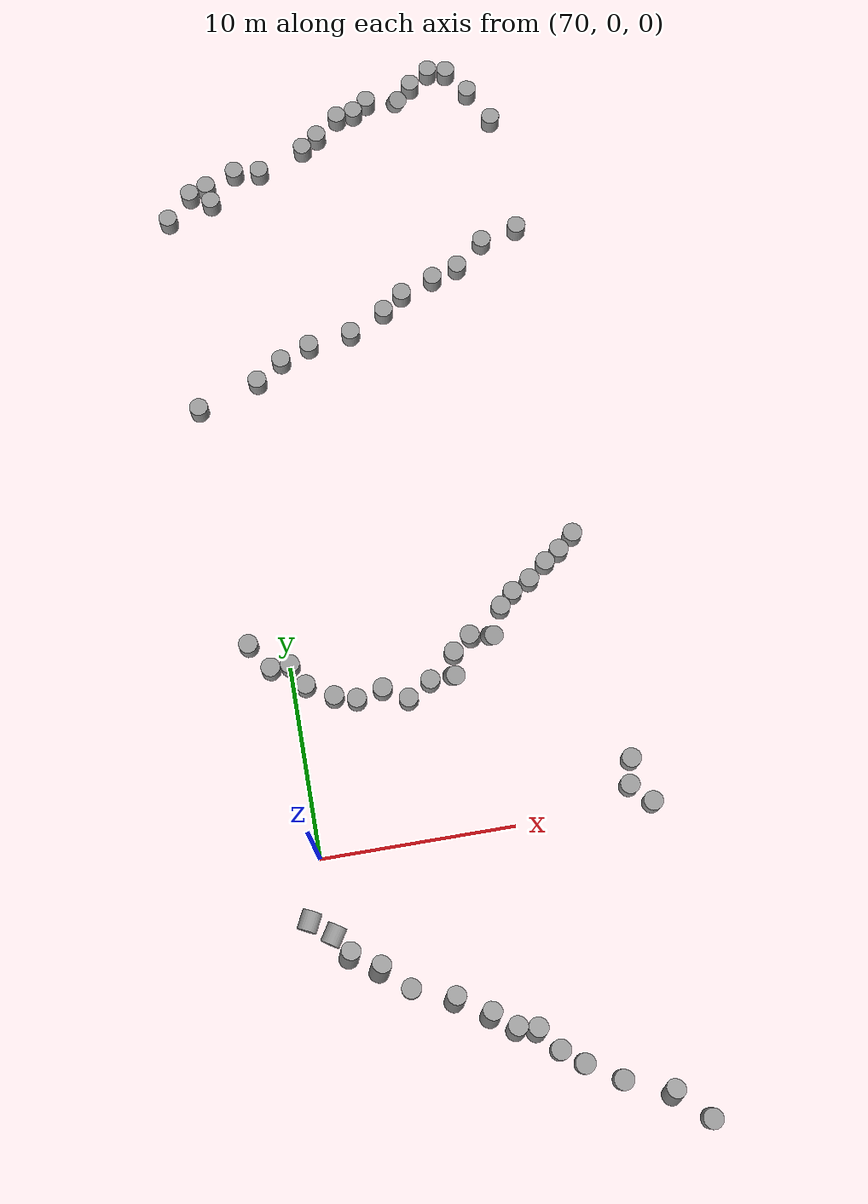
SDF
<sdf version="1.7">
 <world name="default">
  <model name="unit_cylinder_85_clone_244_clone_387">
   <pose>86.1624 32.8533 0.403046 -0.005741 -0.001075 0.00014</pose>
   <link name="link">
    <inertial>
     <mass>1</mass>
     <inertia><ixx>0.145833</ixx><ixy>0</ixy><ixz>0</ixz><iyy>0.145833</iyy><iyz>0</iyz><izz>0.125</izz></inertia>
    </inertial>
    <collision name="collision">
     <geometry><cylinder><radius>0.5</radius><length>1</length></cylinder></geometry>
    </collision>
    <visual name="visual">
     <geometry><cylinder><radius>0.5</radius><length>1</length></cylinder></geometry>
     <material>
      <script><name>Gazebo/Grey</name><uri>file://media/materials/scripts/gazebo.material</uri></script>
     </material>
    </visual>
   </link>
  </model>
  <model name="unit_cylinder_85_clone_244_clone_388">
   <pose>84.0852 32.3172 0.403854 -0.004555 -0.000523 0.000243</pose>
   <link name="link">
    <inertial>
     <mass>1</mass>
     <inertia><ixx>0.145833</ixx><ixy>0</ixy><ixz>0</ixz><iyy>0.145833</iyy><iyz>0</iyz><izz>0.125</izz></inertia>
    </inertial>
    <collision name="collision">
     <geometry><cylinder><radius>0.5</radius><length>1</length></cylinder></geometry>
    </collision>
    <visual name="visual">
     <geometry><cylinder><radius>0.5</radius><length>1</length></cylinder></geometry>
     <material>
      <script><name>Gazebo/Grey</name><uri>file://media/materials/scripts/gazebo.material</uri></script>
     </material>
    </visual>
   </link>
  </model>
  <model name="unit_cylinder_85_clone_244_clone_389">
   <pose>82.4638 31.0029 0.408848 -0.003016 0.000114 0.00044</pose>
   <link name="link">
    <inertial>
     <mass>1</mass>
     <inertia><ixx>0.145833</ixx><ixy>0</ixy><ixz>0</ixz><iyy>0.145833</iyy><iyz>0</iyz><izz>0.125</izz></inertia>
    </inertial>
    <collision name="collision">
     <geometry><cylinder><radius>0.5</radius><length>1</length></cylinder></geometry>
    </collision>
    <visual name="visual">
     <geometry><cylinder><radius>0.5</radius><length>1</length></cylinder></geometry>
     <material>
      <script><name>Gazebo/Grey</name><uri>file://media/materials/scripts/gazebo.material</uri></script>
     </material>
    </visual>
   </link>
  </model>
  <model name="unit_cylinder_85_clone_244_clone_390">
   <pose>80.9995 30.5323 0.41035 -0.0047 -0.000592 0.000469</pose>
   <link name="link">
    <inertial>
     <mass>1</mass>
     <inertia><ixx>0.145833</ixx><ixy>0</ixy><ixz>0</ixz><iyy>0.145833</iyy><iyz>0</iyz><izz>0.125</izz></inertia>
    </inertial>
    <collision name="collision">
     <geometry><cylinder><radius>0.5</radius><length>1</length></cylinder></geometry>
    </collision>
    <visual name="visual">
     <geometry><cylinder><radius>0.5</radius><length>1</length></cylinder></geometry>
     <material>
      <script><name>Gazebo/Grey</name><uri>file://media/materials/scripts/gazebo.material</uri></script>
     </material>
    </visual>
   </link>
  </model>
  <model name="unit_cylinder_85_clone_244_clone_391">
   <pose>78.0001 29.0019 0.415406 -0.002977 0.000135 0.000432</pose>
   <link name="link">
    <inertial>
     <mass>1</mass>
     <inertia><ixx>0.145833</ixx><ixy>0</ixy><ixz>0</ixz><iyy>0.145833</iyy><iyz>0</iyz><izz>0.125</izz></inertia>
    </inertial>
    <collision name="collision">
     <geometry><cylinder><radius>0.5</radius><length>1</length></cylinder></geometry>
    </collision>
    <visual name="visual">
     <geometry><cylinder><radius>0.5</radius><length>1</length></cylinder></geometry>
     <material>
      <script><name>Gazebo/Grey</name><uri>file://media/materials/scripts/gazebo.material</uri></script>
     </material>
    </visual>
   </link>
  </model>
  <model name="unit_cylinder_85_clone_244_clone_392">
   <pose>76.0001 28.0019 0.41865 -0.002969 0.000136 0.000405</pose>
   <link name="link">
    <inertial>
     <mass>1</mass>
     <inertia><ixx>0.145833</ixx><ixy>0</ixy><ixz>0</ixz><iyy>0.145833</iyy><iyz>0</iyz><izz>0.125</izz></inertia>
    </inertial>
    <collision name="collision">
     <geometry><cylinder><radius>0.5</radius><length>1</length></cylinder></geometry>
    </collision>
    <visual name="visual">
     <geometry><cylinder><radius>0.5</radius><length>1</length></cylinder></geometry>
     <material>
      <script><name>Gazebo/Grey</name><uri>file://media/materials/scripts/gazebo.material</uri></script>
     </material>
    </visual>
   </link>
  </model>
  <model name="unit_cylinder_85_clone_244_clone_393">
   <pose>73.6332 27.6292 0.419703 -0.004467 -0.000468 0.000398</pose>
   <link name="link">
    <inertial>
     <mass>1</mass>
     <inertia><ixx>0.145833</ixx><ixy>0</ixy><ixz>0</ixz><iyy>0.145833</iyy><iyz>0</iyz><izz>0.125</izz></inertia>
    </inertial>
    <collision name="collision">
     <geometry><cylinder><radius>0.5</radius><length>1</length></cylinder></geometry>
    </collision>
    <visual name="visual">
     <geometry><cylinder><radius>0.5</radius><length>1</length></cylinder></geometry>
     <material>
      <script><name>Gazebo/Grey</name><uri>file://media/materials/scripts/gazebo.material</uri></script>
     </material>
    </visual>
   </link>
  </model>
  <model name="unit_cylinder_85_clone_244_clone_394">
   <pose>71.9996 27.0036 0.421702 -0.004438 -0.000455 0.00042</pose>
   <link name="link">
    <inertial>
     <mass>1</mass>
     <inertia><ixx>0.145833</ixx><ixy>0</ixy><ixz>0</ixz><iyy>0.145833</iyy><iyz>0</iyz><izz>0.125</izz></inertia>
    </inertial>
    <collision name="collision">
     <geometry><cylinder><radius>0.5</radius><length>1</length></cylinder></geometry>
    </collision>
    <visual name="visual">
     <geometry><cylinder><radius>0.5</radius><length>1</length></cylinder></geometry>
     <material>
      <script><name>Gazebo/Grey</name><uri>file://media/materials/scripts/gazebo.material</uri></script>
     </material>
    </visual>
   </link>
  </model>
  <model name="unit_cylinder_85_clone_244_clone_395">
   <pose>70.5555 26.0019 0.425331 -0.002982 0.000135 0.000381</pose>
   <link name="link">
    <inertial>
     <mass>1</mass>
     <inertia><ixx>0.145833</ixx><ixy>0</ixy><ixz>0</ixz><iyy>0.145833</iyy><iyz>0</iyz><izz>0.125</izz></inertia>
    </inertial>
    <collision name="collision">
     <geometry><cylinder><radius>0.5</radius><length>1</length></cylinder></geometry>
    </collision>
    <visual name="visual">
     <geometry><cylinder><radius>0.5</radius><length>1</length></cylinder></geometry>
     <material>
      <script><name>Gazebo/Grey</name><uri>file://media/materials/scripts/gazebo.material</uri></script>
     </material>
    </visual>
   </link>
  </model>
  <model name="unit_cylinder_85_clone_244_clone_396">
   <pose>67.2229 24.9198 0.428684 -0.004286 -0.000405 -0.000254</pose>
   <link name="link">
    <inertial>
     <mass>1</mass>
     <inertia><ixx>0.145833</ixx><ixy>0</ixy><ixz>0</ixz><iyy>0.145833</iyy><iyz>0</iyz><izz>0.125</izz></inertia>
    </inertial>
    <collision name="collision">
     <geometry><cylinder><radius>0.5</radius><length>1</length></cylinder></geometry>
    </collision>
    <visual name="visual">
     <geometry><cylinder><radius>0.5</radius><length>1</length></cylinder></geometry>
     <material>
      <script><name>Gazebo/Grey</name><uri>file://media/materials/scripts/gazebo.material</uri></script>
     </material>
    </visual>
   </link>
  </model>
  <model name="unit_cylinder_85_clone_244_clone_409">
   <pose>68.0358 11.4214 0.482815 -0.001848 0.002096 -0.00713</pose>
   <link name="link">
    <inertial>
     <mass>1</mass>
     <inertia><ixx>0.145833</ixx><ixy>0</ixy><ixz>0</ixz><iyy>0.145833</iyy><iyz>0</iyz><izz>0.125</izz></inertia>
    </inertial>
    <collision name="collision">
     <geometry><cylinder><radius>0.5</radius><length>1</length></cylinder></geometry>
    </collision>
    <visual name="visual">
     <geometry><cylinder><radius>0.5</radius><length>1</length></cylinder></geometry>
     <material>
      <script><name>Gazebo/Grey</name><uri>file://media/materials/scripts/gazebo.material</uri></script>
     </material>
    </visual>
   </link>
  </model>
  <model name="unit_cylinder_85_clone_244_clone_410">
   <pose>70.0012 10.0013 0.481273 -0.001855 0.002123 1.8e-05</pose>
   <link name="link">
    <inertial>
     <mass>1</mass>
     <inertia><ixx>0.145833</ixx><ixy>0</ixy><ixz>0</ixz><iyy>0.145833</iyy><iyz>0</iyz><izz>0.125</izz></inertia>
    </inertial>
    <collision name="collision">
     <geometry><cylinder><radius>0.5</radius><length>1</length></cylinder></geometry>
    </collision>
    <visual name="visual">
     <geometry><cylinder><radius>0.5</radius><length>1</length></cylinder></geometry>
     <material>
      <script><name>Gazebo/Grey</name><uri>file://media/materials/scripts/gazebo.material</uri></script>
     </material>
    </visual>
   </link>
  </model>
  <model name="unit_cylinder_85_clone_244_clone_411">
   <pose>72.0012 8.00104 0.480754 -0.001896 0.002132 1.6e-05</pose>
   <link name="link">
    <inertial>
     <mass>1</mass>
     <inertia><ixx>0.145833</ixx><ixy>0</ixy><ixz>0</ixz><iyy>0.145833</iyy><iyz>0</iyz><izz>0.125</izz></inertia>
    </inertial>
    <collision name="collision">
     <geometry><cylinder><radius>0.5</radius><length>1</length></cylinder></geometry>
    </collision>
    <visual name="visual">
     <geometry><cylinder><radius>0.5</radius><length>1</length></cylinder></geometry>
     <material>
      <script><name>Gazebo/Grey</name><uri>file://media/materials/scripts/gazebo.material</uri></script>
     </material>
    </visual>
   </link>
  </model>
  <model name="unit_cylinder_85_clone_244_clone_412">
   <pose>74.5083 7.99415 0.4698 -0.00234 0.005793 0.004432</pose>
   <link name="link">
    <inertial>
     <mass>1</mass>
     <inertia><ixx>0.145833</ixx><ixy>0</ixy><ixz>0</ixz><iyy>0.145833</iyy><iyz>0</iyz><izz>0.125</izz></inertia>
    </inertial>
    <collision name="collision">
     <geometry><cylinder><radius>0.5</radius><length>1</length></cylinder></geometry>
    </collision>
    <visual name="visual">
     <geometry><cylinder><radius>0.5</radius><length>1</length></cylinder></geometry>
     <material>
      <script><name>Gazebo/Grey</name><uri>file://media/materials/scripts/gazebo.material</uri></script>
     </material>
    </visual>
   </link>
  </model>
  <model name="unit_cylinder_85_clone_244_clone_413">
   <pose>78.2557 8.1124 0.357906 0.208734 0.13732 0.045012</pose>
   <link name="link">
    <inertial>
     <mass>1</mass>
     <inertia><ixx>0.145833</ixx><ixy>0</ixy><ixz>0</ixz><iyy>0.145833</iyy><iyz>0</iyz><izz>0.125</izz></inertia>
    </inertial>
    <collision name="collision">
     <geometry><cylinder><radius>0.5</radius><length>1</length></cylinder></geometry>
    </collision>
    <visual name="visual">
     <geometry><cylinder><radius>0.5</radius><length>1</length></cylinder></geometry>
     <material>
      <script><name>Gazebo/Grey</name><uri>file://media/materials/scripts/gazebo.material</uri></script>
     </material>
    </visual>
   </link>
  </model>
  <model name="unit_cylinder_85_clone_244_clone_414">
   <pose>79.4495 9.98051 0.520616 -0.005636 -0.112927 -0.078903</pose>
   <link name="link">
    <inertial>
     <mass>1</mass>
     <inertia><ixx>0.145833</ixx><ixy>0</ixy><ixz>0</ixz><iyy>0.145833</iyy><iyz>0</iyz><izz>0.125</izz></inertia>
    </inertial>
    <collision name="collision">
     <geometry><cylinder><radius>0.5</radius><length>1</length></cylinder></geometry>
    </collision>
    <visual name="visual">
     <geometry><cylinder><radius>0.5</radius><length>1</length></cylinder></geometry>
     <material>
      <script><name>Gazebo/Grey</name><uri>file://media/materials/scripts/gazebo.material</uri></script>
     </material>
    </visual>
   </link>
  </model>
  <model name="unit_cylinder_85_clone_244_clone_415">
   <pose>81.2706 11.2649 0.46364 -0.00292 5.6e-05 -0.000237</pose>
   <link name="link">
    <inertial>
     <mass>1</mass>
     <inertia><ixx>0.145833</ixx><ixy>0</ixy><ixz>0</ixz><iyy>0.145833</iyy><iyz>0</iyz><izz>0.125</izz></inertia>
    </inertial>
    <collision name="collision">
     <geometry><cylinder><radius>0.5</radius><length>1</length></cylinder></geometry>
    </collision>
    <visual name="visual">
     <geometry><cylinder><radius>0.5</radius><length>1</length></cylinder></geometry>
     <material>
      <script><name>Gazebo/Grey</name><uri>file://media/materials/scripts/gazebo.material</uri></script>
     </material>
    </visual>
   </link>
  </model>
  <model name="unit_cylinder_85_clone_244_clone_416">
   <pose>84.0114 13.2587 0.457615 -0.002948 0.000135 0.028821</pose>
   <link name="link">
    <inertial>
     <mass>1</mass>
     <inertia><ixx>0.145833</ixx><ixy>0</ixy><ixz>0</ixz><iyy>0.145833</iyy><iyz>0</iyz><izz>0.125</izz></inertia>
    </inertial>
    <collision name="collision">
     <geometry><cylinder><radius>0.5</radius><length>1</length></cylinder></geometry>
    </collision>
    <visual name="visual">
     <geometry><cylinder><radius>0.5</radius><length>1</length></cylinder></geometry>
     <material>
      <script><name>Gazebo/Grey</name><uri>file://media/materials/scripts/gazebo.material</uri></script>
     </material>
    </visual>
   </link>
  </model>
  <model name="unit_cylinder_85_clone_244_clone_417">
   <pose>84.8483 13.8063 0.455938 -0.002933 9.3e-05 0.009161</pose>
   <link name="link">
    <inertial>
     <mass>1</mass>
     <inertia><ixx>0.145833</ixx><ixy>0</ixy><ixz>0</ixz><iyy>0.145833</iyy><iyz>0</iyz><izz>0.125</izz></inertia>
    </inertial>
    <collision name="collision">
     <geometry><cylinder><radius>0.5</radius><length>1</length></cylinder></geometry>
    </collision>
    <visual name="visual">
     <geometry><cylinder><radius>0.5</radius><length>1</length></cylinder></geometry>
     <material>
      <script><name>Gazebo/Grey</name><uri>file://media/materials/scripts/gazebo.material</uri></script>
     </material>
    </visual>
   </link>
  </model>
  <model name="unit_cylinder_85_clone_244_clone_443">
   <pose>85.7239 14.5602 0.453977 -0.002526 -0.000437 0.000493</pose>
   <link name="link">
    <inertial>
     <mass>1</mass>
     <inertia><ixx>0.145833</ixx><ixy>0</ixy><ixz>0</ixz><iyy>0.145833</iyy><iyz>0</iyz><izz>0.125</izz></inertia>
    </inertial>
    <collision name="collision">
     <geometry><cylinder><radius>0.5</radius><length>1</length></cylinder></geometry>
    </collision>
    <visual name="visual">
     <geometry><cylinder><radius>0.5</radius><length>1</length></cylinder></geometry>
     <material>
      <script><name>Gazebo/Grey</name><uri>file://media/materials/scripts/gazebo.material</uri></script>
     </material>
    </visual>
   </link>
  </model>
  <model name="unit_cylinder_85_clone_244_clone_444">
   <pose>83.0183 12.4737 0.45997 -0.00293 5e-05 -0.006405</pose>
   <link name="link">
    <inertial>
     <mass>1</mass>
     <inertia><ixx>0.145833</ixx><ixy>0</ixy><ixz>0</ixz><iyy>0.145833</iyy><iyz>0</iyz><izz>0.125</izz></inertia>
    </inertial>
    <collision name="collision">
     <geometry><cylinder><radius>0.5</radius><length>1</length></cylinder></geometry>
    </collision>
    <visual name="visual">
     <geometry><cylinder><radius>0.5</radius><length>1</length></cylinder></geometry>
     <material>
      <script><name>Gazebo/Grey</name><uri>file://media/materials/scripts/gazebo.material</uri></script>
     </material>
    </visual>
   </link>
  </model>
  <model name="unit_cylinder_85_clone_244_clone_445">
   <pose>82.0212 11.9401 0.46161 -0.002937 7e-05 1.1e-05</pose>
   <link name="link">
    <inertial>
     <mass>1</mass>
     <inertia><ixx>0.145833</ixx><ixy>0</ixy><ixz>0</ixz><iyy>0.145833</iyy><iyz>0</iyz><izz>0.125</izz></inertia>
    </inertial>
    <collision name="collision">
     <geometry><cylinder><radius>0.5</radius><length>1</length></cylinder></geometry>
    </collision>
    <visual name="visual">
     <geometry><cylinder><radius>0.5</radius><length>1</length></cylinder></geometry>
     <material>
      <script><name>Gazebo/Grey</name><uri>file://media/materials/scripts/gazebo.material</uri></script>
     </material>
    </visual>
   </link>
  </model>
  <model name="unit_cylinder_85_clone_244_clone_446">
   <pose>80.5616 9.88824 0.373639 0.217457 0.200361 -0.115582</pose>
   <link name="link">
    <inertial>
     <mass>1</mass>
     <inertia><ixx>0.145833</ixx><ixy>0</ixy><ixz>0</ixz><iyy>0.145833</iyy><iyz>0</iyz><izz>0.125</izz></inertia>
    </inertial>
    <collision name="collision">
     <geometry><cylinder><radius>0.5</radius><length>1</length></cylinder></geometry>
    </collision>
    <visual name="visual">
     <geometry><cylinder><radius>0.5</radius><length>1</length></cylinder></geometry>
     <material>
      <script><name>Gazebo/Grey</name><uri>file://media/materials/scripts/gazebo.material</uri></script>
     </material>
    </visual>
   </link>
  </model>
  <model name="unit_cylinder_85_clone_244_clone_447">
   <pose>78.439 9.25571 0.469712 -0.002915 3.5e-05 -0.015358</pose>
   <link name="link">
    <inertial>
     <mass>1</mass>
     <inertia><ixx>0.145833</ixx><ixy>0</ixy><ixz>0</ixz><iyy>0.145833</iyy><iyz>0</iyz><izz>0.125</izz></inertia>
    </inertial>
    <collision name="collision">
     <geometry><cylinder><radius>0.5</radius><length>1</length></cylinder></geometry>
    </collision>
    <visual name="visual">
     <geometry><cylinder><radius>0.5</radius><length>1</length></cylinder></geometry>
     <material>
      <script><name>Gazebo/Grey</name><uri>file://media/materials/scripts/gazebo.material</uri></script>
     </material>
    </visual>
   </link>
  </model>
  <model name="unit_cylinder_85_clone_244_clone_448">
   <pose>77 8.00168 0.473487 -0.002922 7.5e-05 0.000445</pose>
   <link name="link">
    <inertial>
     <mass>1</mass>
     <inertia><ixx>0.145833</ixx><ixy>0</ixy><ixz>0</ixz><iyy>0.145833</iyy><iyz>0</iyz><izz>0.125</izz></inertia>
    </inertial>
    <collision name="collision">
     <geometry><cylinder><radius>0.5</radius><length>1</length></cylinder></geometry>
    </collision>
    <visual name="visual">
     <geometry><cylinder><radius>0.5</radius><length>1</length></cylinder></geometry>
     <material>
      <script><name>Gazebo/Grey</name><uri>file://media/materials/scripts/gazebo.material</uri></script>
     </material>
    </visual>
   </link>
  </model>
  <model name="unit_cylinder_85_clone_244_clone_449">
   <pose>75.7457 7.24686 0.471145 -0.00122 -0.00468 0.000848</pose>
   <link name="link">
    <inertial>
     <mass>1</mass>
     <inertia><ixx>0.145833</ixx><ixy>0</ixy><ixz>0</ixz><iyy>0.145833</iyy><iyz>0</iyz><izz>0.125</izz></inertia>
    </inertial>
    <collision name="collision">
     <geometry><cylinder><radius>0.5</radius><length>1</length></cylinder></geometry>
    </collision>
    <visual name="visual">
     <geometry><cylinder><radius>0.5</radius><length>1</length></cylinder></geometry>
     <material>
      <script><name>Gazebo/Grey</name><uri>file://media/materials/scripts/gazebo.material</uri></script>
     </material>
    </visual>
   </link>
  </model>
  <model name="unit_cylinder_85_clone_244_clone_450">
   <pose>73.126 7.66968 0.477268 -0.001028 0.004538 0.000744</pose>
   <link name="link">
    <inertial>
     <mass>1</mass>
     <inertia><ixx>0.145833</ixx><ixy>0</ixy><ixz>0</ixz><iyy>0.145833</iyy><iyz>0</iyz><izz>0.125</izz></inertia>
    </inertial>
    <collision name="collision">
     <geometry><cylinder><radius>0.5</radius><length>1</length></cylinder></geometry>
    </collision>
    <visual name="visual">
     <geometry><cylinder><radius>0.5</radius><length>1</length></cylinder></geometry>
     <material>
      <script><name>Gazebo/Grey</name><uri>file://media/materials/scripts/gazebo.material</uri></script>
     </material>
    </visual>
   </link>
  </model>
  <model name="unit_cylinder_85_clone_244_clone_451">
   <pose>79.1541 29.8573 0.412427 -0.004704 -0.000592 0.000411</pose>
   <link name="link">
    <inertial>
     <mass>1</mass>
     <inertia><ixx>0.145833</ixx><ixy>0</ixy><ixz>0</ixz><iyy>0.145833</iyy><iyz>0</iyz><izz>0.125</izz></inertia>
    </inertial>
    <collision name="collision">
     <geometry><cylinder><radius>0.5</radius><length>1</length></cylinder></geometry>
    </collision>
    <visual name="visual">
     <geometry><cylinder><radius>0.5</radius><length>1</length></cylinder></geometry>
     <material>
      <script><name>Gazebo/Grey</name><uri>file://media/materials/scripts/gazebo.material</uri></script>
     </material>
    </visual>
   </link>
  </model>
  <model name="unit_cylinder_85_clone_244_clone_452">
   <pose>69.0007 10.0005 0.483332 -0.001142 0.001606 0.000753</pose>
   <link name="link">
    <inertial>
     <mass>1</mass>
     <inertia><ixx>0.145833</ixx><ixy>0</ixy><ixz>0</ixz><iyy>0.145833</iyy><iyz>0</iyz><izz>0.125</izz></inertia>
    </inertial>
    <collision name="collision">
     <geometry><cylinder><radius>0.5</radius><length>1</length></cylinder></geometry>
    </collision>
    <visual name="visual">
     <geometry><cylinder><radius>0.5</radius><length>1</length></cylinder></geometry>
     <material>
      <script><name>Gazebo/Grey</name><uri>file://media/materials/scripts/gazebo.material</uri></script>
     </material>
    </visual>
   </link>
  </model>
  <model name="unit_cylinder_85_clone_244_clone_453">
   <pose>70.6448 8.81245 0.482074 -0.00136 0.001745 0.000921</pose>
   <link name="link">
    <inertial>
     <mass>1</mass>
     <inertia><ixx>0.145833</ixx><ixy>0</ixy><ixz>0</ixz><iyy>0.145833</iyy><iyz>0</iyz><izz>0.125</izz></inertia>
    </inertial>
    <collision name="collision">
     <geometry><cylinder><radius>0.5</radius><length>1</length></cylinder></geometry>
    </collision>
    <visual name="visual">
     <geometry><cylinder><radius>0.5</radius><length>1</length></cylinder></geometry>
     <material>
      <script><name>Gazebo/Grey</name><uri>file://media/materials/scripts/gazebo.material</uri></script>
     </material>
    </visual>
   </link>
  </model>
  <model name="unit_cylinder_85_clone_244_clone_482">
   <pose>69.0405 -2.93643 0.25 -1.5708 0.28695 -0.459564</pose>
   <link name="link">
    <inertial>
     <mass>1</mass>
     <inertia><ixx>0.145833</ixx><ixy>0</ixy><ixz>0</ixz><iyy>0.145833</iyy><iyz>0</iyz><izz>0.125</izz></inertia>
    </inertial>
    <collision name="collision">
     <geometry><cylinder><radius>0.5</radius><length>1</length></cylinder></geometry>
    </collision>
    <visual name="visual">
     <geometry><cylinder><radius>0.5</radius><length>1</length></cylinder></geometry>
     <material>
      <script><name>Gazebo/Grey</name><uri>file://media/materials/scripts/gazebo.material</uri></script>
     </material>
    </visual>
   </link>
  </model>
  <model name="unit_cylinder_85_clone_244_clone_483">
   <pose>70.1224 -3.79207 0.249996 -1.5708 0.548811 -0.562503</pose>
   <link name="link">
    <inertial>
     <mass>1</mass>
     <inertia><ixx>0.145833</ixx><ixy>0</ixy><ixz>0</ixz><iyy>0.145833</iyy><iyz>0</iyz><izz>0.125</izz></inertia>
    </inertial>
    <collision name="collision">
     <geometry><cylinder><radius>0.5</radius><length>1</length></cylinder></geometry>
    </collision>
    <visual name="visual">
     <geometry><cylinder><radius>0.5</radius><length>1</length></cylinder></geometry>
     <material>
      <script><name>Gazebo/Grey</name><uri>file://media/materials/scripts/gazebo.material</uri></script>
     </material>
    </visual>
   </link>
  </model>
  <model name="unit_cylinder_85_clone_244_clone_484">
   <pose>70.7574 -4.89672 0.405476 -0.34911 0.201242 -0.056326</pose>
   <link name="link">
    <inertial>
     <mass>1</mass>
     <inertia><ixx>0.145833</ixx><ixy>0</ixy><ixz>0</ixz><iyy>0.145833</iyy><iyz>0</iyz><izz>0.125</izz></inertia>
    </inertial>
    <collision name="collision">
     <geometry><cylinder><radius>0.5</radius><length>1</length></cylinder></geometry>
    </collision>
    <visual name="visual">
     <geometry><cylinder><radius>0.5</radius><length>1</length></cylinder></geometry>
     <material>
      <script><name>Gazebo/Grey</name><uri>file://media/materials/scripts/gazebo.material</uri></script>
     </material>
    </visual>
   </link>
  </model>
  <model name="unit_cylinder_85_clone_244_clone_485">
   <pose>72.1288 -5.7945 0.423655 -0.412441 0.245964 -0.05066</pose>
   <link name="link">
    <inertial>
     <mass>1</mass>
     <inertia><ixx>0.145833</ixx><ixy>0</ixy><ixz>0</ixz><iyy>0.145833</iyy><iyz>0</iyz><izz>0.125</izz></inertia>
    </inertial>
    <collision name="collision">
     <geometry><cylinder><radius>0.5</radius><length>1</length></cylinder></geometry>
    </collision>
    <visual name="visual">
     <geometry><cylinder><radius>0.5</radius><length>1</length></cylinder></geometry>
     <material>
      <script><name>Gazebo/Grey</name><uri>file://media/materials/scripts/gazebo.material</uri></script>
     </material>
    </visual>
   </link>
  </model>
  <model name="unit_cylinder_85_clone_244_clone_486">
   <pose>73.4813 -6.98366 0.461642 0.000828 0.000457 0.006471</pose>
   <link name="link">
    <inertial>
     <mass>1</mass>
     <inertia><ixx>0.145833</ixx><ixy>0</ixy><ixz>0</ixz><iyy>0.145833</iyy><iyz>0</iyz><izz>0.125</izz></inertia>
    </inertial>
    <collision name="collision">
     <geometry><cylinder><radius>0.5</radius><length>1</length></cylinder></geometry>
    </collision>
    <visual name="visual">
     <geometry><cylinder><radius>0.5</radius><length>1</length></cylinder></geometry>
     <material>
      <script><name>Gazebo/Grey</name><uri>file://media/materials/scripts/gazebo.material</uri></script>
     </material>
    </visual>
   </link>
  </model>
  <model name="unit_cylinder_85_clone_244_clone_487">
   <pose>75.5046 -7.8253 0.394488 -0.311389 0.186471 -0.035897</pose>
   <link name="link">
    <inertial>
     <mass>1</mass>
     <inertia><ixx>0.145833</ixx><ixy>0</ixy><ixz>0</ixz><iyy>0.145833</iyy><iyz>0</iyz><izz>0.125</izz></inertia>
    </inertial>
    <collision name="collision">
     <geometry><cylinder><radius>0.5</radius><length>1</length></cylinder></geometry>
    </collision>
    <visual name="visual">
     <geometry><cylinder><radius>0.5</radius><length>1</length></cylinder></geometry>
     <material>
      <script><name>Gazebo/Grey</name><uri>file://media/materials/scripts/gazebo.material</uri></script>
     </material>
    </visual>
   </link>
  </model>
  <model name="unit_cylinder_85_clone_244_clone_488">
   <pose>77.0932 -8.83608 0.39942 -0.327163 0.194193 -0.041437</pose>
   <link name="link">
    <inertial>
     <mass>1</mass>
     <inertia><ixx>0.145833</ixx><ixy>0</ixy><ixz>0</ixz><iyy>0.145833</iyy><iyz>0</iyz><izz>0.125</izz></inertia>
    </inertial>
    <collision name="collision">
     <geometry><cylinder><radius>0.5</radius><length>1</length></cylinder></geometry>
    </collision>
    <visual name="visual">
     <geometry><cylinder><radius>0.5</radius><length>1</length></cylinder></geometry>
     <material>
      <script><name>Gazebo/Grey</name><uri>file://media/materials/scripts/gazebo.material</uri></script>
     </material>
    </visual>
   </link>
  </model>
  <model name="unit_cylinder_85_clone_244_clone_489">
   <pose>79.1781 -9.90305 0.359072 -0.211143 0.139587 0.003948</pose>
   <link name="link">
    <inertial>
     <mass>1</mass>
     <inertia><ixx>0.145833</ixx><ixy>0</ixy><ixz>0</ixz><iyy>0.145833</iyy><iyz>0</iyz><izz>0.125</izz></inertia>
    </inertial>
    <collision name="collision">
     <geometry><cylinder><radius>0.5</radius><length>1</length></cylinder></geometry>
    </collision>
    <visual name="visual">
     <geometry><cylinder><radius>0.5</radius><length>1</length></cylinder></geometry>
     <material>
      <script><name>Gazebo/Grey</name><uri>file://media/materials/scripts/gazebo.material</uri></script>
     </material>
    </visual>
   </link>
  </model>
  <model name="unit_cylinder_85_clone_244_clone_490">
   <pose>78.2067 -9.6806 0.442133 -0.224816 0.135664 -0.024298</pose>
   <link name="link">
    <inertial>
     <mass>1</mass>
     <inertia><ixx>0.145833</ixx><ixy>0</ixy><ixz>0</ixz><iyy>0.145833</iyy><iyz>0</iyz><izz>0.125</izz></inertia>
    </inertial>
    <collision name="collision">
     <geometry><cylinder><radius>0.5</radius><length>1</length></cylinder></geometry>
    </collision>
    <visual name="visual">
     <geometry><cylinder><radius>0.5</radius><length>1</length></cylinder></geometry>
     <material>
      <script><name>Gazebo/Grey</name><uri>file://media/materials/scripts/gazebo.material</uri></script>
     </material>
    </visual>
   </link>
  </model>
  <model name="unit_cylinder_85_clone_244_clone_491">
   <pose>80.0934 -11.0214 0.453362 -0.036708 0.023023 0.00154</pose>
   <link name="link">
    <inertial>
     <mass>1</mass>
     <inertia><ixx>0.145833</ixx><ixy>0</ixy><ixz>0</ixz><iyy>0.145833</iyy><iyz>0</iyz><izz>0.125</izz></inertia>
    </inertial>
    <collision name="collision">
     <geometry><cylinder><radius>0.5</radius><length>1</length></cylinder></geometry>
    </collision>
    <visual name="visual">
     <geometry><cylinder><radius>0.5</radius><length>1</length></cylinder></geometry>
     <material>
      <script><name>Gazebo/Grey</name><uri>file://media/materials/scripts/gazebo.material</uri></script>
     </material>
    </visual>
   </link>
  </model>
  <model name="unit_cylinder_85_clone_244_clone_492">
   <pose>81.1351 -11.8276 0.45409 0.000861 0.000445 0.003528</pose>
   <link name="link">
    <inertial>
     <mass>1</mass>
     <inertia><ixx>0.145833</ixx><ixy>0</ixy><ixz>0</ixz><iyy>0.145833</iyy><iyz>0</iyz><izz>0.125</izz></inertia>
    </inertial>
    <collision name="collision">
     <geometry><cylinder><radius>0.5</radius><length>1</length></cylinder></geometry>
    </collision>
    <visual name="visual">
     <geometry><cylinder><radius>0.5</radius><length>1</length></cylinder></geometry>
     <material>
      <script><name>Gazebo/Grey</name><uri>file://media/materials/scripts/gazebo.material</uri></script>
     </material>
    </visual>
   </link>
  </model>
  <model name="unit_cylinder_85_clone_244_clone_493">
   <pose>82.8104 -12.8682 0.45246 0.000851 0.000447 0.000445</pose>
   <link name="link">
    <inertial>
     <mass>1</mass>
     <inertia><ixx>0.145833</ixx><ixy>0</ixy><ixz>0</ixz><iyy>0.145833</iyy><iyz>0</iyz><izz>0.125</izz></inertia>
    </inertial>
    <collision name="collision">
     <geometry><cylinder><radius>0.5</radius><length>1</length></cylinder></geometry>
    </collision>
    <visual name="visual">
     <geometry><cylinder><radius>0.5</radius><length>1</length></cylinder></geometry>
     <material>
      <script><name>Gazebo/Grey</name><uri>file://media/materials/scripts/gazebo.material</uri></script>
     </material>
    </visual>
   </link>
  </model>
  <model name="unit_cylinder_85_clone_244_clone_494">
   <pose>85.095 -13.8358 0.399709 -0.327973 0.194886 -0.040597</pose>
   <link name="link">
    <inertial>
     <mass>1</mass>
     <inertia><ixx>0.145833</ixx><ixy>0</ixy><ixz>0</ixz><iyy>0.145833</iyy><iyz>0</iyz><izz>0.125</izz></inertia>
    </inertial>
    <collision name="collision">
     <geometry><cylinder><radius>0.5</radius><length>1</length></cylinder></geometry>
    </collision>
    <visual name="visual">
     <geometry><cylinder><radius>0.5</radius><length>1</length></cylinder></geometry>
     <material>
      <script><name>Gazebo/Grey</name><uri>file://media/materials/scripts/gazebo.material</uri></script>
     </material>
    </visual>
   </link>
  </model>
  <model name="unit_cylinder_85_clone_244_clone_495">
   <pose>86.6321 -15.3042 0.451198 0.000519 -0.000317 0.001338</pose>
   <link name="link">
    <inertial>
     <mass>1</mass>
     <inertia><ixx>0.145833</ixx><ixy>0</ixy><ixz>0</ixz><iyy>0.145833</iyy><iyz>0</iyz><izz>0.125</izz></inertia>
    </inertial>
    <collision name="collision">
     <geometry><cylinder><radius>0.5</radius><length>1</length></cylinder></geometry>
    </collision>
    <visual name="visual">
     <geometry><cylinder><radius>0.5</radius><length>1</length></cylinder></geometry>
     <material>
      <script><name>Gazebo/Grey</name><uri>file://media/materials/scripts/gazebo.material</uri></script>
     </material>
    </visual>
   </link>
  </model>
  <model name="unit_cylinder_85_clone_244_clone_518">
   <pose>86.9866 -0.011116 0.451253 -3.7e-05 1.1e-05 0.006617</pose>
   <link name="link">
    <inertial>
     <mass>1</mass>
     <inertia><ixx>0.145833</ixx><ixy>0</ixy><ixz>0</ixz><iyy>0.145833</iyy><iyz>0</iyz><izz>0.125</izz></inertia>
    </inertial>
    <collision name="collision">
     <geometry><cylinder><radius>0.5</radius><length>1</length></cylinder></geometry>
    </collision>
    <visual name="visual">
     <geometry><cylinder><radius>0.5</radius><length>1</length></cylinder></geometry>
     <material>
      <script><name>Gazebo/Grey</name><uri>file://media/materials/scripts/gazebo.material</uri></script>
     </material>
    </visual>
   </link>
  </model>
  <model name="unit_cylinder_85_clone_244_clone_519">
   <pose>86 1.00001 0.451237 -1.4e-05 8e-06 0.000476</pose>
   <link name="link">
    <inertial>
     <mass>1</mass>
     <inertia><ixx>0.145833</ixx><ixy>0</ixy><ixz>0</ixz><iyy>0.145833</iyy><iyz>0</iyz><izz>0.125</izz></inertia>
    </inertial>
    <collision name="collision">
     <geometry><cylinder><radius>0.5</radius><length>1</length></cylinder></geometry>
    </collision>
    <visual name="visual">
     <geometry><cylinder><radius>0.5</radius><length>1</length></cylinder></geometry>
     <material>
      <script><name>Gazebo/Grey</name><uri>file://media/materials/scripts/gazebo.material</uri></script>
     </material>
    </visual>
   </link>
  </model>
  <model name="unit_cylinder_85_clone_244_clone_520">
   <pose>86.346 2.29984 0.451234 -1e-06 -4e-06 0.010868</pose>
   <link name="link">
    <inertial>
     <mass>1</mass>
     <inertia><ixx>0.145833</ixx><ixy>0</ixy><ixz>0</ixz><iyy>0.145833</iyy><iyz>0</iyz><izz>0.125</izz></inertia>
    </inertial>
    <collision name="collision">
     <geometry><cylinder><radius>0.5</radius><length>1</length></cylinder></geometry>
    </collision>
    <visual name="visual">
     <geometry><cylinder><radius>0.5</radius><length>1</length></cylinder></geometry>
     <material>
      <script><name>Gazebo/Grey</name><uri>file://media/materials/scripts/gazebo.material</uri></script>
     </material>
    </visual>
   </link>
  </model>
  <model name="unit_cylinder_85_clone_244_clone_600">
   <pose>86 40 0.250002 4e-06 -0 0.00049</pose>
   <link name="link">
    <inertial>
     <mass>1</mass>
     <inertia><ixx>0.145833</ixx><ixy>0</ixy><ixz>0</ixz><iyy>0.145833</iyy><iyz>0</iyz><izz>0.125</izz></inertia>
    </inertial>
    <collision name="collision">
     <geometry><cylinder><radius>0.5</radius><length>1</length></cylinder></geometry>
    </collision>
    <visual name="visual">
     <geometry><cylinder><radius>0.5</radius><length>1</length></cylinder></geometry>
     <material>
      <script><name>Gazebo/Grey</name><uri>file://media/materials/scripts/gazebo.material</uri></script>
     </material>
    </visual>
   </link>
  </model>
  <model name="unit_cylinder_85_clone_244_clone_601">
   <pose>85 42 0.25 0 -0 0.000522</pose>
   <link name="link">
    <inertial>
     <mass>1</mass>
     <inertia><ixx>0.145833</ixx><ixy>0</ixy><ixz>0</ixz><iyy>0.145833</iyy><iyz>0</iyz><izz>0.125</izz></inertia>
    </inertial>
    <collision name="collision">
     <geometry><cylinder><radius>0.5</radius><length>1</length></cylinder></geometry>
    </collision>
    <visual name="visual">
     <geometry><cylinder><radius>0.5</radius><length>1</length></cylinder></geometry>
     <material>
      <script><name>Gazebo/Grey</name><uri>file://media/materials/scripts/gazebo.material</uri></script>
     </material>
    </visual>
   </link>
  </model>
  <model name="unit_cylinder_85_clone_244_clone_602">
   <pose>84 43.4862 0.249998 -3e-06 3e-06 0.000474</pose>
   <link name="link">
    <inertial>
     <mass>1</mass>
     <inertia><ixx>0.145833</ixx><ixy>0</ixy><ixz>0</ixz><iyy>0.145833</iyy><iyz>0</iyz><izz>0.125</izz></inertia>
    </inertial>
    <collision name="collision">
     <geometry><cylinder><radius>0.5</radius><length>1</length></cylinder></geometry>
    </collision>
    <visual name="visual">
     <geometry><cylinder><radius>0.5</radius><length>1</length></cylinder></geometry>
     <material>
      <script><name>Gazebo/Grey</name><uri>file://media/materials/scripts/gazebo.material</uri></script>
     </material>
    </visual>
   </link>
  </model>
  <model name="unit_cylinder_85_clone_244_clone_603">
   <pose>82.9551 43.5653 0.451066 -0.000384 0.00051 0.000481</pose>
   <link name="link">
    <inertial>
     <mass>1</mass>
     <inertia><ixx>0.145833</ixx><ixy>0</ixy><ixz>0</ixz><iyy>0.145833</iyy><iyz>0</iyz><izz>0.125</izz></inertia>
    </inertial>
    <collision name="collision">
     <geometry><cylinder><radius>0.5</radius><length>1</length></cylinder></geometry>
    </collision>
    <visual name="visual">
     <geometry><cylinder><radius>0.5</radius><length>1</length></cylinder></geometry>
     <material>
      <script><name>Gazebo/Grey</name><uri>file://media/materials/scripts/gazebo.material</uri></script>
     </material>
    </visual>
   </link>
  </model>
  <model name="unit_cylinder_85_clone_244_clone_604">
   <pose>81.8015 42.808 0.450122 0.000915 0.0004 0.000566</pose>
   <link name="link">
    <inertial>
     <mass>1</mass>
     <inertia><ixx>0.145833</ixx><ixy>0</ixy><ixz>0</ixz><iyy>0.145833</iyy><iyz>0</iyz><izz>0.125</izz></inertia>
    </inertial>
    <collision name="collision">
     <geometry><cylinder><radius>0.5</radius><length>1</length></cylinder></geometry>
    </collision>
    <visual name="visual">
     <geometry><cylinder><radius>0.5</radius><length>1</length></cylinder></geometry>
     <material>
      <script><name>Gazebo/Grey</name><uri>file://media/materials/scripts/gazebo.material</uri></script>
     </material>
    </visual>
   </link>
  </model>
  <model name="unit_cylinder_85_clone_244_clone_605">
   <pose>80.8686 41.9973 0.394594 0.332628 0.144916 0.02965</pose>
   <link name="link">
    <inertial>
     <mass>1</mass>
     <inertia><ixx>0.145833</ixx><ixy>0</ixy><ixz>0</ixz><iyy>0.145833</iyy><iyz>0</iyz><izz>0.125</izz></inertia>
    </inertial>
    <collision name="collision">
     <geometry><cylinder><radius>0.5</radius><length>1</length></cylinder></geometry>
    </collision>
    <visual name="visual">
     <geometry><cylinder><radius>0.5</radius><length>1</length></cylinder></geometry>
     <material>
      <script><name>Gazebo/Grey</name><uri>file://media/materials/scripts/gazebo.material</uri></script>
     </material>
    </visual>
   </link>
  </model>
  <model name="unit_cylinder_85_clone_244_clone_606">
   <pose>79.1362 42.1716 0.450647 0.001103 0.000484 0.01272</pose>
   <link name="link">
    <inertial>
     <mass>1</mass>
     <inertia><ixx>0.145833</ixx><ixy>0</ixy><ixz>0</ixz><iyy>0.145833</iyy><iyz>0</iyz><izz>0.125</izz></inertia>
    </inertial>
    <collision name="collision">
     <geometry><cylinder><radius>0.5</radius><length>1</length></cylinder></geometry>
    </collision>
    <visual name="visual">
     <geometry><cylinder><radius>0.5</radius><length>1</length></cylinder></geometry>
     <material>
      <script><name>Gazebo/Grey</name><uri>file://media/materials/scripts/gazebo.material</uri></script>
     </material>
    </visual>
   </link>
  </model>
  <model name="unit_cylinder_85_clone_244_clone_607">
   <pose>78.3057 41.6145 0.450511 0.000991 0.000379 0.034034</pose>
   <link name="link">
    <inertial>
     <mass>1</mass>
     <inertia><ixx>0.145833</ixx><ixy>0</ixy><ixz>0</ixz><iyy>0.145833</iyy><iyz>0</iyz><izz>0.125</izz></inertia>
    </inertial>
    <collision name="collision">
     <geometry><cylinder><radius>0.5</radius><length>1</length></cylinder></geometry>
    </collision>
    <visual name="visual">
     <geometry><cylinder><radius>0.5</radius><length>1</length></cylinder></geometry>
     <material>
      <script><name>Gazebo/Grey</name><uri>file://media/materials/scripts/gazebo.material</uri></script>
     </material>
    </visual>
   </link>
  </model>
  <model name="unit_cylinder_85_clone_244_clone_608">
   <pose>77.3191 41.4515 0.450791 0.001078 0.000483 -0.019635</pose>
   <link name="link">
    <inertial>
     <mass>1</mass>
     <inertia><ixx>0.145833</ixx><ixy>0</ixy><ixz>0</ixz><iyy>0.145833</iyy><iyz>0</iyz><izz>0.125</izz></inertia>
    </inertial>
    <collision name="collision">
     <geometry><cylinder><radius>0.5</radius><length>1</length></cylinder></geometry>
    </collision>
    <visual name="visual">
     <geometry><cylinder><radius>0.5</radius><length>1</length></cylinder></geometry>
     <material>
      <script><name>Gazebo/Grey</name><uri>file://media/materials/scripts/gazebo.material</uri></script>
     </material>
    </visual>
   </link>
  </model>
  <model name="unit_cylinder_85_clone_244_clone_609">
   <pose>76.0003 40.4162 0.450358 0.000981 0.000444 0.000545</pose>
   <link name="link">
    <inertial>
     <mass>1</mass>
     <inertia><ixx>0.145833</ixx><ixy>0</ixy><ixz>0</ixz><iyy>0.145833</iyy><iyz>0</iyz><izz>0.125</izz></inertia>
    </inertial>
    <collision name="collision">
     <geometry><cylinder><radius>0.5</radius><length>1</length></cylinder></geometry>
    </collision>
    <visual name="visual">
     <geometry><cylinder><radius>0.5</radius><length>1</length></cylinder></geometry>
     <material>
      <script><name>Gazebo/Grey</name><uri>file://media/materials/scripts/gazebo.material</uri></script>
     </material>
    </visual>
   </link>
  </model>
  <model name="unit_cylinder_85_clone_244_clone_610">
   <pose>75.0793 39.7675 0.450129 0.000947 0.000413 0.000698</pose>
   <link name="link">
    <inertial>
     <mass>1</mass>
     <inertia><ixx>0.145833</ixx><ixy>0</ixy><ixz>0</ixz><iyy>0.145833</iyy><iyz>0</iyz><izz>0.125</izz></inertia>
    </inertial>
    <collision name="collision">
     <geometry><cylinder><radius>0.5</radius><length>1</length></cylinder></geometry>
    </collision>
    <visual name="visual">
     <geometry><cylinder><radius>0.5</radius><length>1</length></cylinder></geometry>
     <material>
      <script><name>Gazebo/Grey</name><uri>file://media/materials/scripts/gazebo.material</uri></script>
     </material>
    </visual>
   </link>
  </model>
  <model name="unit_cylinder_85_clone_244_clone_611">
   <pose>72.4562 38.7226 0.450268 0.000982 0.000431 0.000466</pose>
   <link name="link">
    <inertial>
     <mass>1</mass>
     <inertia><ixx>0.145833</ixx><ixy>0</ixy><ixz>0</ixz><iyy>0.145833</iyy><iyz>0</iyz><izz>0.125</izz></inertia>
    </inertial>
    <collision name="collision">
     <geometry><cylinder><radius>0.5</radius><length>1</length></cylinder></geometry>
    </collision>
    <visual name="visual">
     <geometry><cylinder><radius>0.5</radius><length>1</length></cylinder></geometry>
     <material>
      <script><name>Gazebo/Grey</name><uri>file://media/materials/scripts/gazebo.material</uri></script>
     </material>
    </visual>
   </link>
  </model>
  <model name="unit_cylinder_85_clone_244_clone_612">
   <pose>71.0564 38.9001 0.451109 0.001075 0.000491 0.000491</pose>
   <link name="link">
    <inertial>
     <mass>1</mass>
     <inertia><ixx>0.145833</ixx><ixy>0</ixy><ixz>0</ixz><iyy>0.145833</iyy><iyz>0</iyz><izz>0.125</izz></inertia>
    </inertial>
    <collision name="collision">
     <geometry><cylinder><radius>0.5</radius><length>1</length></cylinder></geometry>
    </collision>
    <visual name="visual">
     <geometry><cylinder><radius>0.5</radius><length>1</length></cylinder></geometry>
     <material>
      <script><name>Gazebo/Grey</name><uri>file://media/materials/scripts/gazebo.material</uri></script>
     </material>
    </visual>
   </link>
  </model>
  <model name="unit_cylinder_85_clone_244_clone_613">
   <pose>69.5077 37.2342 0.45012 0.000898 0.000582 -0.15552</pose>
   <link name="link">
    <inertial>
     <mass>1</mass>
     <inertia><ixx>0.145833</ixx><ixy>0</ixy><ixz>0</ixz><iyy>0.145833</iyy><iyz>0</iyz><izz>0.125</izz></inertia>
    </inertial>
    <collision name="collision">
     <geometry><cylinder><radius>0.5</radius><length>1</length></cylinder></geometry>
    </collision>
    <visual name="visual">
     <geometry><cylinder><radius>0.5</radius><length>1</length></cylinder></geometry>
     <material>
      <script><name>Gazebo/Grey</name><uri>file://media/materials/scripts/gazebo.material</uri></script>
     </material>
    </visual>
   </link>
  </model>
  <model name="unit_cylinder_85_clone_244_clone_614">
   <pose>67.0003 36.5035 0.450528 0.001013 0.000462 0.00031</pose>
   <link name="link">
    <inertial>
     <mass>1</mass>
     <inertia><ixx>0.145833</ixx><ixy>0</ixy><ixz>0</ixz><iyy>0.145833</iyy><iyz>0</iyz><izz>0.125</izz></inertia>
    </inertial>
    <collision name="collision">
     <geometry><cylinder><radius>0.5</radius><length>1</length></cylinder></geometry>
    </collision>
    <visual name="visual">
     <geometry><cylinder><radius>0.5</radius><length>1</length></cylinder></geometry>
     <material>
      <script><name>Gazebo/Grey</name><uri>file://media/materials/scripts/gazebo.material</uri></script>
     </material>
    </visual>
   </link>
  </model>
  <model name="unit_cylinder_85_clone_244_clone_621">
   <pose>68.3919 37.8937 0.451317 0.000837 0.000145 0.254288</pose>
   <link name="link">
    <inertial>
     <mass>1</mass>
     <inertia><ixx>0.145833</ixx><ixy>0</ixy><ixz>0</ixz><iyy>0.145833</iyy><iyz>0</iyz><izz>0.125</izz></inertia>
    </inertial>
    <collision name="collision">
     <geometry><cylinder><radius>0.5</radius><length>1</length></cylinder></geometry>
    </collision>
    <visual name="visual">
     <geometry><cylinder><radius>0.5</radius><length>1</length></cylinder></geometry>
     <material>
      <script><name>Gazebo/Grey</name><uri>file://media/materials/scripts/gazebo.material</uri></script>
     </material>
    </visual>
   </link>
  </model>
  <model name="unit_cylinder_85_clone_244_clone_622">
   <pose>69.3678 38.2383 0.451271 0.000914 0.000603 -0.159793</pose>
   <link name="link">
    <inertial>
     <mass>1</mass>
     <inertia><ixx>0.145833</ixx><ixy>0</ixy><ixz>0</ixz><iyy>0.145833</iyy><iyz>0</iyz><izz>0.125</izz></inertia>
    </inertial>
    <collision name="collision">
     <geometry><cylinder><radius>0.5</radius><length>1</length></cylinder></geometry>
    </collision>
    <visual name="visual">
     <geometry><cylinder><radius>0.5</radius><length>1</length></cylinder></geometry>
     <material>
      <script><name>Gazebo/Grey</name><uri>file://media/materials/scripts/gazebo.material</uri></script>
     </material>
    </visual>
   </link>
  </model>
 </world>
</sdf>
